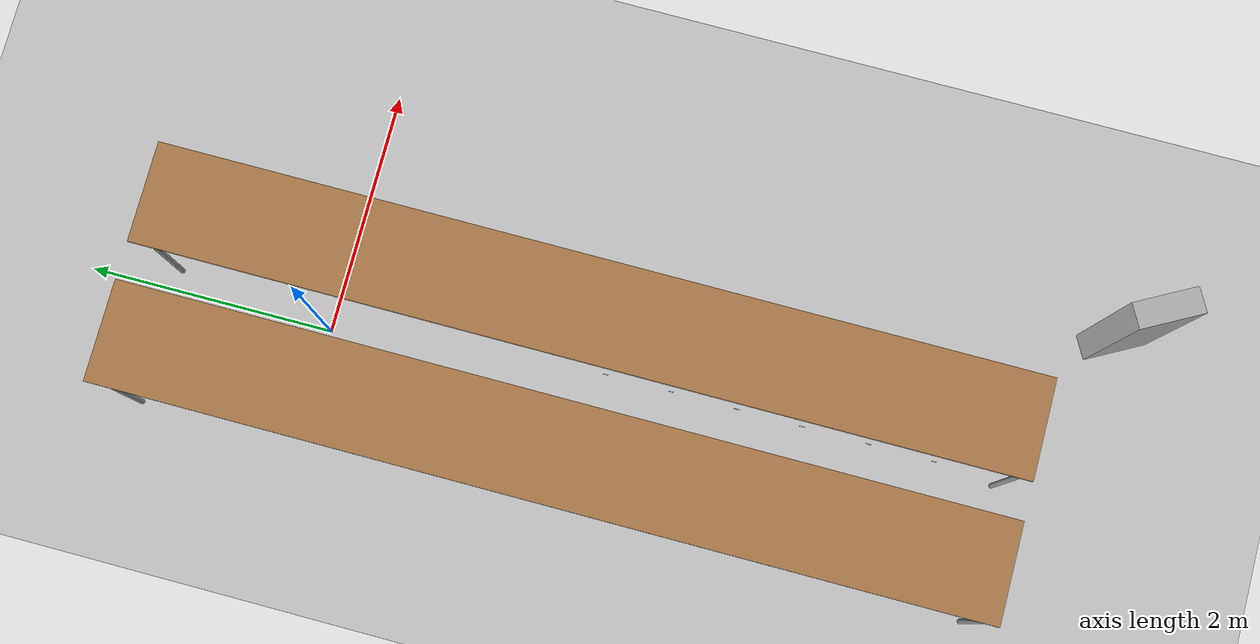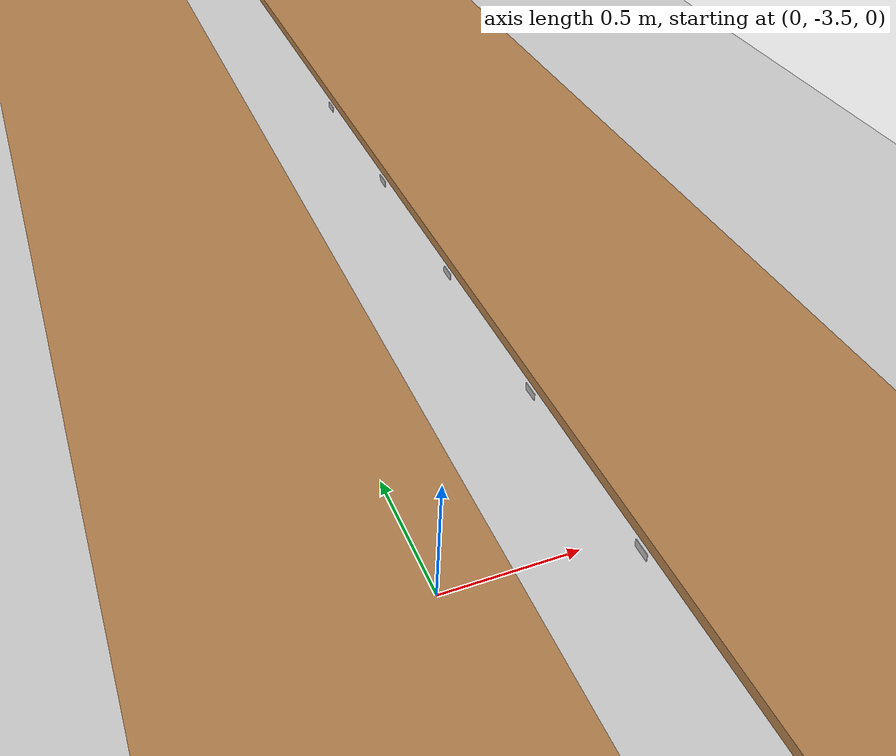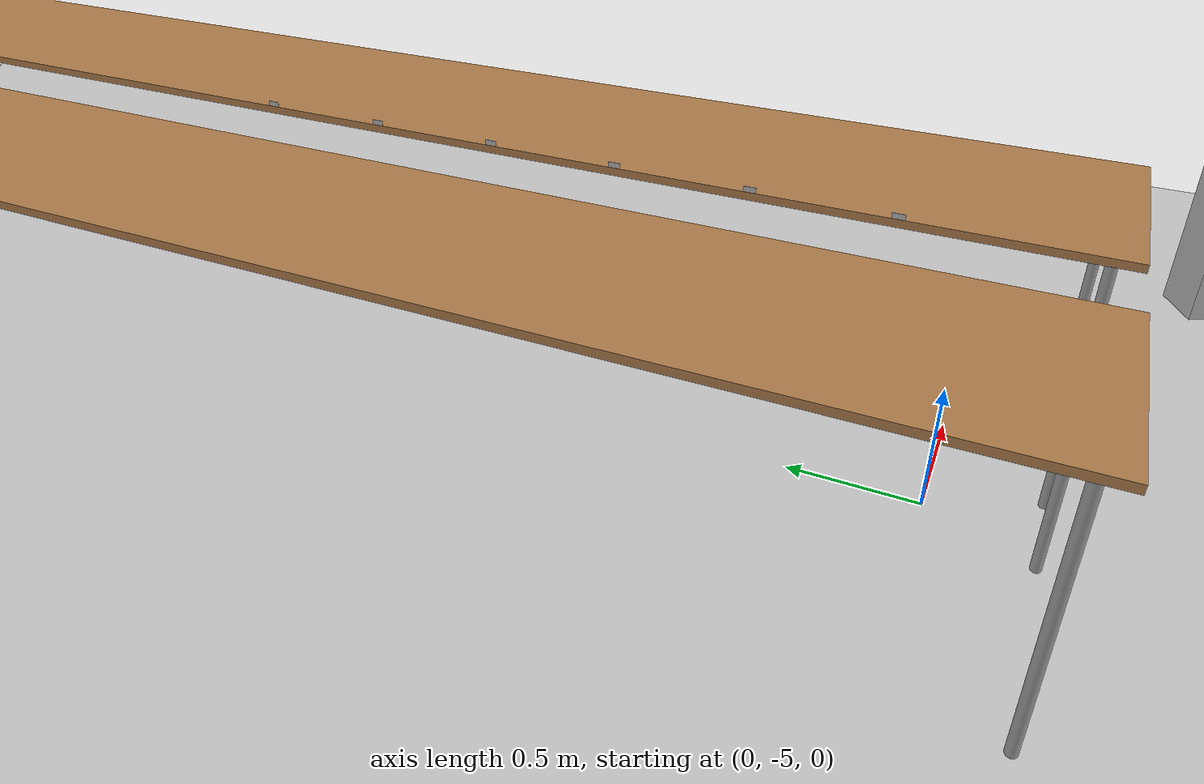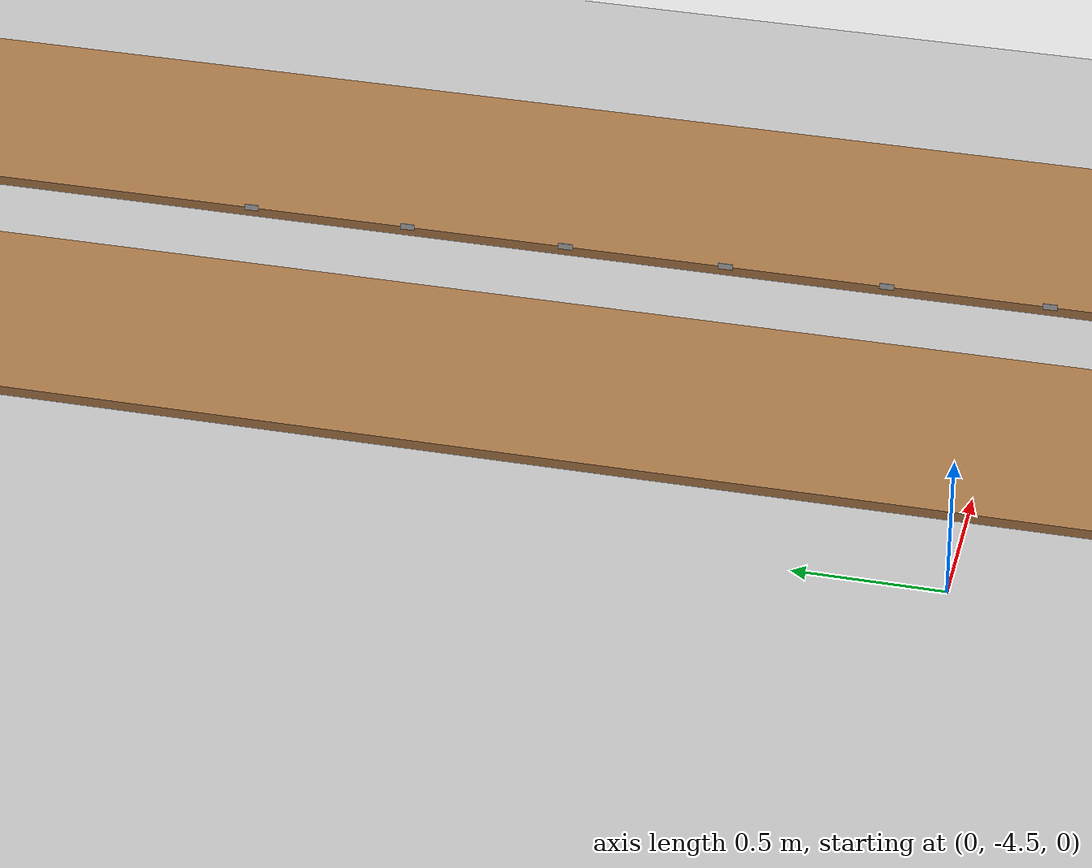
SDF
<sdf version="1.5">
 <world name="default">
  <include><uri>model://ground_plane</uri></include>
  <include><uri>model://sun</uri></include>
  <model name="table_model">
   <pose>0.55 0 0 0 0 1.570796</pose>
   <include><uri>model://table</uri></include>
  </model>
  <model name="table_model2">
   <pose>-0.55 0 0 0 0 1.570796</pose>
   <include><uri>model://table</uri></include>
  </model>
  <model name="lidar_model">
   <pose>0.55 0 0.80 3.14 0 0</pose>
   <include><uri>model://lidar_model</uri></include>
  </model>
  <model name="ultrasonic1">
   <pose>0.10 -4.75 1.05 0 0 0</pose>
   <include><uri>model://hcsr04</uri></include>
  </model>
  <model name="ultrasonic2">
   <pose>0.10 -4.25 1.05 0 0 0</pose>
   <include><uri>model://hcsr04</uri></include>
  </model>
  <model name="ultrasonic3">
   <pose>0.10 -3.75 1.05 0 0 0</pose>
   <include><uri>model://hcsr04</uri></include>
  </model>
  <model name="ultrasonic4">
   <pose>0.10 -3.25 1.05 0 0 0</pose>
   <include><uri>model://hcsr04</uri></include>
  </model>
  <model name="ultrasonic5">
   <pose>0.10 -2.75 1.05 0 0 0</pose>
   <include><uri>model://hcsr04</uri></include>
  </model>
  <model name="ultrasonic6">
   <pose>0.10 -2.25 1.05 0 0 0</pose>
   <include><uri>model://hcsr04</uri></include>
  </model>
  <model name="sim_child"><pose>1.5 -6 0 0 0 0.5</pose><include><uri>model://child</uri></include></model>
  <model name="my_camera">
   <pose>0.45 -1.58 1.8 0 1.570796 0</pose>
   <static>true</static>
   <link name="link">
    <sensor name="webcam" type="camera">
     <plugin name="webcam_plugin" filename="libgazebo_ros_camera.so">
      <robotNamespace>camera_plugin</robotNamespace>
      <updateRate>30.0</updateRate>
      <cameraName>webcam</cameraName>
      <imageTopicName>/sensor/webcam/img_raw</imageTopicName>
      <cameraInfoTopicName>sensor/webcam/camera_info</cameraInfoTopicName>
     </plugin>
     <plugin name="webcam_plugin" filename="libsim_webcam_plugin.so"/>
     <update_rate>30</update_rate>
     <camera>
      <save enabled="false"><path>/tmp/camera_save_tutorial</path></save>
      <horizontal_fov>1.047</horizontal_fov>
      <image><width>720</width><height>480</height><format>R8G8B8</format></image>
      <aspect_ratio>1.8</aspect_ratio>
     </camera>
     <visualize>true</visualize>
     <always_on>1</always_on>
     <update_rate>30</update_rate>
    </sensor>
   </link>
  </model>
  <physics type="ode">
   <gravity>0.000000 0.000000 -9.810000</gravity>
   <max_step_size>0.01</max_step_size>
   <real_time_factor>1</real_time_factor>
   <real_time_update_rate>100</real_time_update_rate>
   <ode>
    <solver><type>quick</type><iters>100</iters><precon_iters>0</precon_iters><sor>1.000000</sor></solver>
    <constraints>
     <cfm>0.000000</cfm>
     <erp>0.500000</erp>
     <contact_max_correcting_vel>1000.000000</contact_max_correcting_vel>
     <contact_surface_layer>0.00000</contact_surface_layer>
    </constraints>
   </ode>
  </physics>
 </world>
</sdf>

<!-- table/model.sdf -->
<sdf version="1.5">
  <model name="table">
    <static>true</static>
    <link name="link">
      <collision name="surface">
        <pose>-2 0 1.0 0 0 0</pose>
        <geometry>
          <box>
            <size>7.0 0.8 0.03</size>
          </box>
        </geometry>
        <surface>
          <friction>
            <ode>
              <mu>0.6</mu>
              <mu2>0.6</mu2>
            </ode>
          </friction>
        </surface>
      </collision>
      <visual name="visual1">
        <pose>-2 0 1.0 0 0 0</pose>
        <geometry>
          <box>
            <size>7.0 0.8 0.03</size>
          </box>
        </geometry>
        <material>
          <script>
            <uri>file://media/materials/scripts/gazebo.material</uri>
            <name>Gazebo/Wood</name>
          </script>
        </material>
      </visual>
      <collision name="front_left_leg">
        <pose>-5.4 0.38 0.5 0 0 0</pose>
        <geometry>
          <cylinder>
            <radius>0.02</radius>
            <length>1.0</length>
          </cylinder>
        </geometry>
      </collision>
      <visual name="front_left_leg">
        <pose>-5.4 0.38 0.5 0 0 0</pose>
        <geometry>
          <cylinder>
            <radius>0.02</radius>
            <length>1.0</length>
          </cylinder>
        </geometry>
        <material>
          <script>
            <uri>file://media/materials/scripts/gazebo.material</uri>
            <name>Gazebo/Grey</name>
          </script>
        </material>
      </visual>
      <collision name="front_right_leg">
        <pose>-5.4 -0.38 0.5 0 0 0</pose>
        <geometry>
          <cylinder>
            <radius>0.02</radius>
            <length>1.0</length>
          </cylinder>
        </geometry>
      </collision>
      <visual name="front_right_leg">
        <pose>-5.4 -0.38 0.5 0 0 0</pose>
        <geometry>
          <cylinder>
            <radius>0.02</radius>
            <length>1.0</length>
          </cylinder>
        </geometry>
        <material>
          <script>
            <uri>file://media/materials/scripts/gazebo.material</uri>
            <name>Gazebo/Grey</name>
          </script>
        </material>
      </visual>
      <collision name="back_right_leg">
        <pose>1.3 -0.38 0.5 0 0 0</pose>
        <geometry>
          <cylinder>
            <radius>0.02</radius>
            <length>1.0</length>
          </cylinder>
        </geometry>
      </collision>
      <visual name="back_right_leg">
        <pose>1.3 -0.38 0.5 0 0 0</pose>
        <geometry>
          <cylinder>
            <radius>0.02</radius>
            <length>1.0</length>
          </cylinder>
        </geometry>
        <material>
          <script>
            <uri>file://media/materials/scripts/gazebo.material</uri>
            <name>Gazebo/Grey</name>
          </script>
        </material>
      </visual>
      <collision name="back_left_leg">
        <pose>1.3 0.38 0.5 0 0 0</pose>
        <geometry>
          <cylinder>
            <radius>0.02</radius>
            <length>1.0</length>
          </cylinder>
        </geometry>
      </collision>
      <visual name="back_left_leg">
        <pose>1.3 0.38 0.5 0 0 0</pose>
        <geometry>
          <cylinder>
            <radius>0.02</radius>
            <length>1.0</length>
          </cylinder>
        </geometry>
        <material>
          <script>
            <uri>file://media/materials/scripts/gazebo.material</uri>
            <name>Gazebo/Grey</name>
          </script>
        </material>
      </visual>
    </link>
  </model>
</sdf>

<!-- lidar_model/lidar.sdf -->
<sdf version="1.6">
<model name="lidar">
	<static>true</static>
	<link name="lidar_link">
		<pose>0 0 0.02 0 0 0</pose>
      	<collision name="base_collision">
			<geometry>
				<cylinder>
					<radius>0.036285</radius>
					<length>0.04</length>
				</cylinder>
			</geometry>
      	</collision>

		<visual name="base_visual">
			<geometry>
				<cylinder>
					<radius>0.036285</radius>
					<length>0.04</length>
				</cylinder>
			</geometry>
		</visual>

		<sensor type="ray" name="sensor">
			<pose>0 0 -0.004645 0 0 0</pose>
			<visualize>true</visualize>
			<update_rate>10</update_rate>
			<ray>
				<scan>
					<horizontal>
						<samples>360</samples>
						<resolution>1</resolution>
						<min_angle>-3.141592</min_angle>
						<max_angle>3.141592</max_angle>
					</horizontal>
					<vertical>
						<samples>1</samples>
						<resolution>1</resolution>
						<min_angle>0</min_angle>
						<max_angle>-0.1</max_angle>
					</vertical>
				</scan>
				<range>
					<min>0.2</min>
					<max>18</max>
					<resolution>0.02</resolution>
				</range>
			</ray>
			<plugin name="lidar_control" filename="libsim_lidar_plugin.so">
        <lidardatatopicName>/sensor/lidar</lidardatatopicName>
				<topicName>/sensor/lidar/scan</topicName>
				<frameName>laser</frameName>
			</plugin>
		</sensor>
	</link>
</model>
</sdf>

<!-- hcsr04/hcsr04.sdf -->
<sdf version="1.5">
    <model name="hcsr04">
        <pose>0 0 0 0 0 0</pose>
        <static>true</static>
        <link name="hcsr04_link">
            <pose>0 0 0 0 0 0</pose>
            <gravity>false</gravity>
            <visual name="hcsr04_visual">
                <geometry>
                    <box>
                        <size>0.0015 0.045 0.02</size>
                    </box>
                </geometry>
            </visual>
            <collision name="hcsr04_collision">
                <geometry>
                    <box>
                        <size>0.0015 0.045 0.02</size>
                    </box>
                </geometry>
            </collision>
            <sensor name="hcsr04-sensor" type="sonar">
                <plugin name="hcsr04_sensor_plugin_plugin" filename="libsim_sonar_plugin.so">
                    <fov>0.05</fov>
                    <robotNamespace></robotNamespace>
                    <frameName>/hcsr04</frameName>
                    <topicName>/sensor/sonar</topicName>
                </plugin>
                <pose>0 0 0 0 -1.5707 0</pose>
                <sonar>
                    <min>0.02</min>
                    <max>2.00</max>
                    <radius>0.02</radius>
                </sonar>
                <always_on>1</always_on>
                <update_rate>30</update_rate>
                <visualize>true</visualize>
            </sensor>
        </link>

    </model>
</sdf>

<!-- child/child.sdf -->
<sdf version="1.6">
    <model name="child">
        <pose>0 0 1 0 0 0</pose>
        <link name="link">

        <gravity>0</gravity>
        <collision name="collision">
            <geometry>
            <box>
                <size>0.2 0.5 1.5 </size>
            </box>
            </geometry>
        </collision>

        <visual name="visual">
            <geometry>
            <box>
                <size>0.2 0.5 1.5</size>
            </box>
            </geometry>
        </visual>

            <inertial>
                <mass value="50"/>
            </inertial>

        </link>

        <plugin name="model_child" filename="libmodel_child.so">
            <velocity>0</velocity>
            <angle>0</angle>
        </plugin>
    </model>
</sdf>
